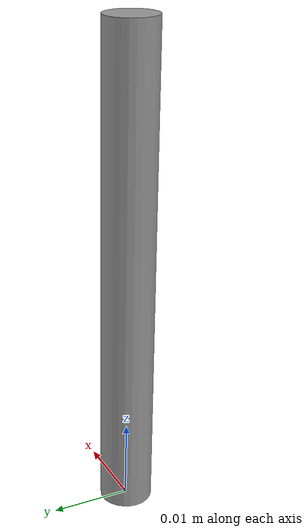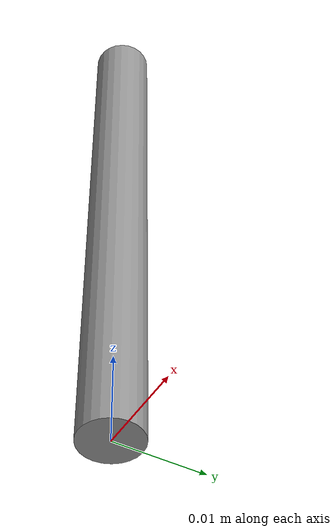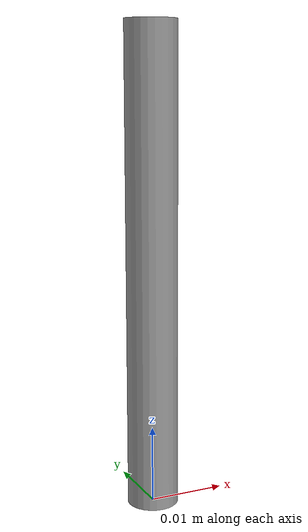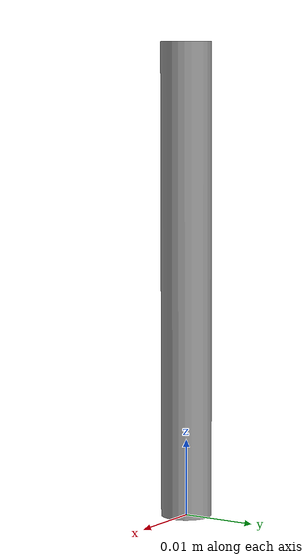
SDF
<?xml version="1.0" ?>
<sdf version="1.5">
  <model name="metal_peg">
    <link name="link">
      <pose>0 0 0.031 0 0 0</pose>
      <inertial>
        <mass>0.0121</mass>
        <inertia>
          <ixx>3.908975583333333e-06</ixx>
          <ixy>0</ixy>
          <ixz>0</ixz>
          <iyy>3.908975583333333e-06</iyy>
          <iyz>0</iyz>
          <izz>6.58845e-08</izz>
        </inertia>
      </inertial>

      <collision name="collision">
        <geometry>
          <cylinder>
            <radius> 0.0033 </radius>
            <length> 0.062 </length>
          </cylinder>
        </geometry>
        <surface>
          <contact>
            <!-- stainless steel 18-8 material properties -->
            <poissons_ratio>0.305</poissons_ratio>
            <elastic_modulus>2.0e+11</elastic_modulus>
            <ode>
              <kp>100000</kp>
              <kd>100</kd>
              <max_vel>100.0</max_vel>
              <min_depth>0.001</min_depth>
            </ode>
          </contact>
          <friction>
            <torsional>
              <coefficient>1.0</coefficient>
              <use_patch_radius>0</use_patch_radius>
              <surface_radius>0.01</surface_radius>
            </torsional>
          </friction>
        </surface>
      </collision>

      <visual name="visual">
        <geometry>
          <cylinder>
            <radius> 0.0033 </radius>
            <length> 0.062 </length>
          </cylinder>
        </geometry>
        <material>
          <script>
            <uri>file://media/materials/scripts/gazebo.material</uri>
            <name>Gazebo/Grey</name>
          </script>
        </material>
      </visual>

    </link>
  </model>
</sdf>
